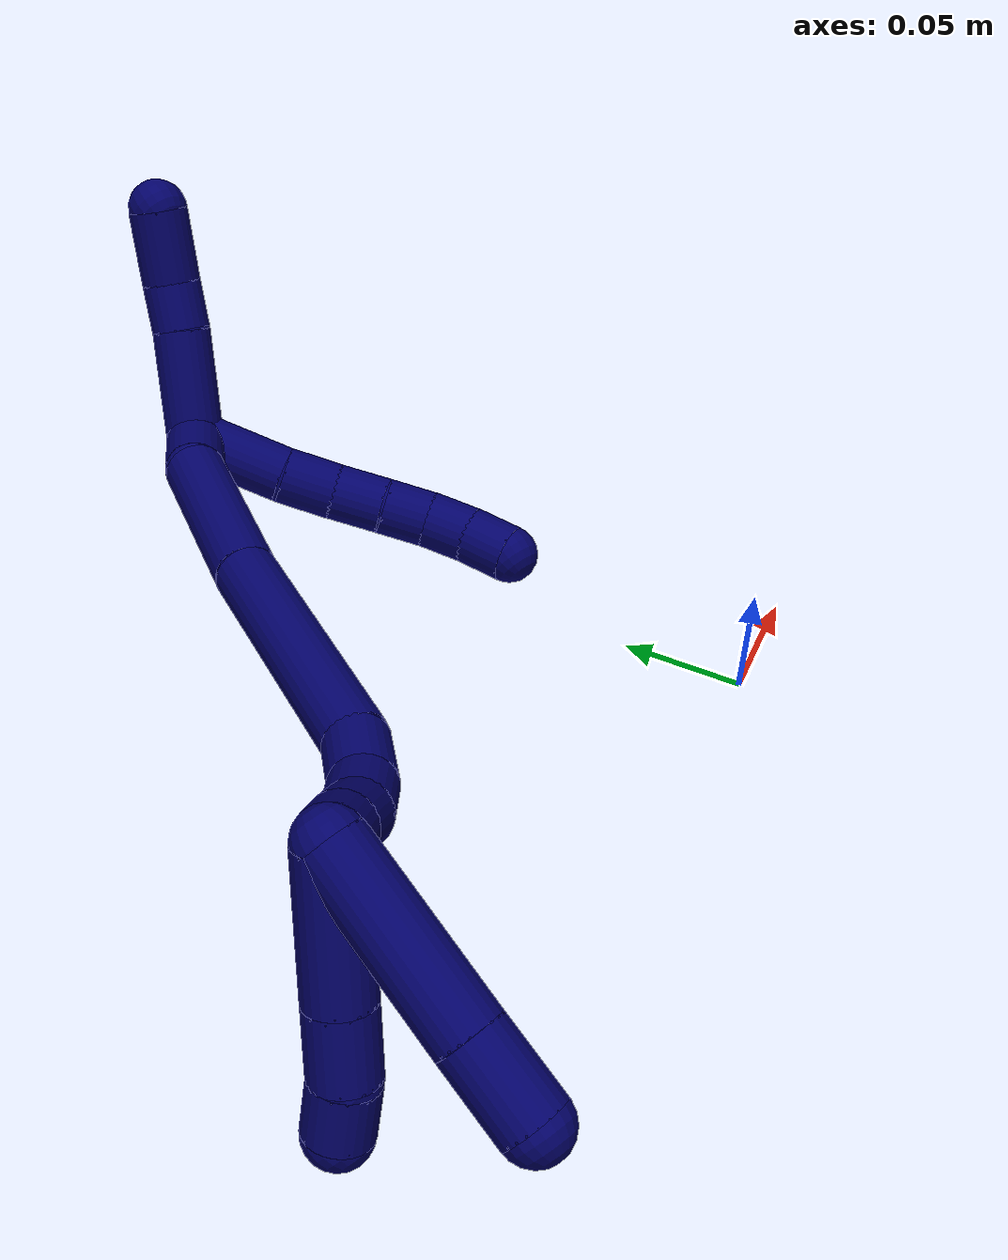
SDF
<sdf version="1.7">
 <world name="default">
  <model name="7">
   <static>0</static>
   <link name="7">
    <collision name="collision-cylinder-e_1_2_8">
     <pose>0.005984 -0.010526 -0.017146 2.59102 0.289101 0.951706</pose>
     <geometry><cylinder><radius>0.0125</radius><length>0.041981</length></cylinder></geometry>
     <surface>
      <friction><ode><mu>1.16</mu><mu2>1.16</mu2><slip1>0</slip1><slip2>0</slip2></ode></friction>
      <contact><ode><kp>1e+06</kp><kd>1</kd><max_vel>0</max_vel><min_depth>0.001</min_depth></ode></contact>
     </surface>
    </collision>
    <visual name="visual-cylinder-e_1_2_8">
     <pose>0.005984 -0.010526 -0.017146 2.59102 0.289101 0.951706</pose>
     <geometry><cylinder><radius>0.0125</radius><length>0.041981</length></cylinder></geometry>
     <material><ambient>0.003922 0 0.403922 1</ambient></material>
    </visual>
    <collision name="collision-cylinder-e_2_8_9">
     <pose>0.016353 -0.027671 -0.04328 2.5068 0.374322 1.04591</pose>
     <geometry><cylinder><radius>0.0125</radius><length>0.023983</length></cylinder></geometry>
     <surface>
      <friction><ode><mu>1.16</mu><mu2>1.16</mu2><slip1>0</slip1><slip2>0</slip2></ode></friction>
      <contact><ode><kp>1e+06</kp><kd>1</kd><max_vel>0</max_vel><min_depth>0.001</min_depth></ode></contact>
     </surface>
    </collision>
    <visual name="visual-cylinder-e_2_8_9">
     <pose>0.016353 -0.027671 -0.04328 2.5068 0.374322 1.04591</pose>
     <geometry><cylinder><radius>0.0125</radius><length>0.023983</length></cylinder></geometry>
     <material><ambient>0.003922 0 0.403922 1</ambient></material>
    </visual>
    <collision name="collision-cylinder-e_3_9_10">
     <pose>0.023216 -0.041104 -0.061062 2.48244 0.21914 0.622343</pose>
     <geometry><cylinder><radius>0.0125</radius><length>0.022799</length></cylinder></geometry>
     <surface>
      <friction><ode><mu>1.16</mu><mu2>1.16</mu2><slip1>0</slip1><slip2>0</slip2></ode></friction>
      <contact><ode><kp>1e+06</kp><kd>1</kd><max_vel>0</max_vel><min_depth>0.001</min_depth></ode></contact>
     </surface>
    </collision>
    <visual name="visual-cylinder-e_3_9_10">
     <pose>0.023216 -0.041104 -0.061062 2.48244 0.21914 0.622343</pose>
     <geometry><cylinder><radius>0.0125</radius><length>0.022799</length></cylinder></geometry>
     <material><ambient>0.003922 0 0.403922 1</ambient></material>
    </visual>
    <collision name="collision-cylinder-e_4_10_11">
     <pose>0.028912 -0.053942 -0.077698 2.48642 0.314732 0.873696</pose>
     <geometry><cylinder><radius>0.0125</radius><length>0.020795</length></cylinder></geometry>
     <surface>
      <friction><ode><mu>1.16</mu><mu2>1.16</mu2><slip1>0</slip1><slip2>0</slip2></ode></friction>
      <contact><ode><kp>1e+06</kp><kd>1</kd><max_vel>0</max_vel><min_depth>0.001</min_depth></ode></contact>
     </surface>
    </collision>
    <visual name="visual-cylinder-e_4_10_11">
     <pose>0.028912 -0.053942 -0.077698 2.48642 0.314732 0.873696</pose>
     <geometry><cylinder><radius>0.0125</radius><length>0.020795</length></cylinder></geometry>
     <material><ambient>0.003922 0 0.403922 1</ambient></material>
    </visual>
    <collision name="collision-cylinder-e_5_11_12">
     <pose>0.032655 -0.065461 -0.094051 2.56847 0.051633 0.174817</pose>
     <geometry><cylinder><radius>0.0125</radius><length>0.020293</length></cylinder></geometry>
     <surface>
      <friction><ode><mu>1.16</mu><mu2>1.16</mu2><slip1>0</slip1><slip2>0</slip2></ode></friction>
      <contact><ode><kp>1e+06</kp><kd>1</kd><max_vel>0</max_vel><min_depth>0.001</min_depth></ode></contact>
     </surface>
    </collision>
    <visual name="visual-cylinder-e_5_11_12">
     <pose>0.032655 -0.065461 -0.094051 2.56847 0.051633 0.174817</pose>
     <geometry><cylinder><radius>0.0125</radius><length>0.020293</length></cylinder></geometry>
     <material><ambient>0.003922 0 0.403922 1</ambient></material>
    </visual>
    <collision name="collision-cylinder-e_6_12_6">
     <pose>0.032473 -0.075771 -0.111386 2.64192 -0.070023 -0.272828</pose>
     <geometry><cylinder><radius>0.0125</radius><length>0.02015</length></cylinder></geometry>
     <surface>
      <friction><ode><mu>1.16</mu><mu2>1.16</mu2><slip1>0</slip1><slip2>0</slip2></ode></friction>
      <contact><ode><kp>1e+06</kp><kd>1</kd><max_vel>0</max_vel><min_depth>0.001</min_depth></ode></contact>
     </surface>
    </collision>
    <visual name="visual-cylinder-e_6_12_6">
     <pose>0.032473 -0.075771 -0.111386 2.64192 -0.070023 -0.272828</pose>
     <geometry><cylinder><radius>0.0125</radius><length>0.02015</length></cylinder></geometry>
     <material><ambient>0.003922 0 0.403922 1</ambient></material>
    </visual>
    <collision name="collision-cylinder-e_1_2_13">
     <pose>-0.00695 -0.012704 0.018975 0.58997 -0.295429 -0.090363</pose>
     <geometry><cylinder><radius>0.0125</radius><length>0.047739</length></cylinder></geometry>
     <surface>
      <friction><ode><mu>1.16</mu><mu2>1.16</mu2><slip1>0</slip1><slip2>0</slip2></ode></friction>
      <contact><ode><kp>1e+06</kp><kd>1</kd><max_vel>0</max_vel><min_depth>0.001</min_depth></ode></contact>
     </surface>
    </collision>
    <visual name="visual-cylinder-e_1_2_13">
     <pose>-0.00695 -0.012704 0.018975 0.58997 -0.295429 -0.090363</pose>
     <geometry><cylinder><radius>0.0125</radius><length>0.047739</length></cylinder></geometry>
     <material><ambient>0.003922 0 0.403922 1</ambient></material>
    </visual>
    <collision name="collision-cylinder-e_2_13_14">
     <pose>-0.016901 -0.030175 0.046553 0.505968 -0.296198 -0.0771</pose>
     <geometry><cylinder><radius>0.0125</radius><length>0.020565</length></cylinder></geometry>
     <surface>
      <friction><ode><mu>1.16</mu><mu2>1.16</mu2><slip1>0</slip1><slip2>0</slip2></ode></friction>
      <contact><ode><kp>1e+06</kp><kd>1</kd><max_vel>0</max_vel><min_depth>0.001</min_depth></ode></contact>
     </surface>
    </collision>
    <visual name="visual-cylinder-e_2_13_14">
     <pose>-0.016901 -0.030175 0.046553 0.505968 -0.296198 -0.0771</pose>
     <geometry><cylinder><radius>0.0125</radius><length>0.020565</length></cylinder></geometry>
     <material><ambient>0.003922 0 0.403922 1</ambient></material>
    </visual>
    <collision name="collision-cylinder-e_3_14_5">
     <pose>-0.026864 -0.042989 0.0669 0.600787 -0.454798 -0.143116</pose>
     <geometry><cylinder><radius>0.0125</radius><length>0.031696</length></cylinder></geometry>
     <surface>
      <friction><ode><mu>1.16</mu><mu2>1.16</mu2><slip1>0</slip1><slip2>0</slip2></ode></friction>
      <contact><ode><kp>1e+06</kp><kd>1</kd><max_vel>0</max_vel><min_depth>0.001</min_depth></ode></contact>
     </surface>
    </collision>
    <visual name="visual-cylinder-e_3_14_5">
     <pose>-0.026864 -0.042989 0.0669 0.600787 -0.454798 -0.143116</pose>
     <geometry><cylinder><radius>0.0125</radius><length>0.031696</length></cylinder></geometry>
     <material><ambient>0.003922 0 0.403922 1</ambient></material>
    </visual>
    <collision name="collision-cylinder-e_1_2_15">
     <pose>-0.01437 0.000262 -0.011173 -3.11815 -0.909769 3.09367</pose>
     <geometry><cylinder><radius>0.0125</radius><length>0.036408</length></cylinder></geometry>
     <surface>
      <friction><ode><mu>1.16</mu><mu2>1.16</mu2><slip1>0</slip1><slip2>0</slip2></ode></friction>
      <contact><ode><kp>1e+06</kp><kd>1</kd><max_vel>0</max_vel><min_depth>0.001</min_depth></ode></contact>
     </surface>
    </collision>
    <visual name="visual-cylinder-e_1_2_15">
     <pose>-0.01437 0.000262 -0.011173 -3.11815 -0.909769 3.09367</pose>
     <geometry><cylinder><radius>0.0125</radius><length>0.036408</length></cylinder></geometry>
     <material><ambient>0.003922 0 0.403922 1</ambient></material>
    </visual>
    <collision name="collision-cylinder-e_2_15_16">
     <pose>-0.049663 -0.00205 -0.053465 3.05906 -0.590367 -2.87167</pose>
     <geometry><cylinder><radius>0.0125</radius><length>0.075176</length></cylinder></geometry>
     <surface>
      <friction><ode><mu>1.16</mu><mu2>1.16</mu2><slip1>0</slip1><slip2>0</slip2></ode></friction>
      <contact><ode><kp>1e+06</kp><kd>1</kd><max_vel>0</max_vel><min_depth>0.001</min_depth></ode></contact>
     </surface>
    </collision>
    <visual name="visual-cylinder-e_2_15_16">
     <pose>-0.049663 -0.00205 -0.053465 3.05906 -0.590367 -2.87167</pose>
     <geometry><cylinder><radius>0.0125</radius><length>0.075176</length></cylinder></geometry>
     <material><ambient>0.003922 0 0.403922 1</ambient></material>
    </visual>
    <collision name="collision-cylinder-e_3_16_17">
     <pose>-0.09662 -0.011537 -0.128374 2.98502 -0.530975 -2.57985</pose>
     <geometry><cylinder><radius>0.0125</radius><length>0.10282</length></cylinder></geometry>
     <surface>
      <friction><ode><mu>1.16</mu><mu2>1.16</mu2><slip1>0</slip1><slip2>0</slip2></ode></friction>
      <contact><ode><kp>1e+06</kp><kd>1</kd><max_vel>0</max_vel><min_depth>0.001</min_depth></ode></contact>
     </surface>
    </collision>
    <visual name="visual-cylinder-e_3_16_17">
     <pose>-0.09662 -0.011537 -0.128374 2.98502 -0.530975 -2.57985</pose>
     <geometry><cylinder><radius>0.0125</radius><length>0.10282</length></cylinder></geometry>
     <material><ambient>0.003922 0 0.403922 1</ambient></material>
    </visual>
    <collision name="collision-cylinder-e_4_17_18">
     <pose>-0.131313 -0.017684 -0.180396 -3.04883 -0.808555 2.92548</pose>
     <geometry><cylinder><radius>0.0125</radius><length>0.023946</length></cylinder></geometry>
     <surface>
      <friction><ode><mu>1.16</mu><mu2>1.16</mu2><slip1>0</slip1><slip2>0</slip2></ode></friction>
      <contact><ode><kp>1e+06</kp><kd>1</kd><max_vel>0</max_vel><min_depth>0.001</min_depth></ode></contact>
     </surface>
    </collision>
    <visual name="visual-cylinder-e_4_17_18">
     <pose>-0.131313 -0.017684 -0.180396 -3.04883 -0.808555 2.92548</pose>
     <geometry><cylinder><radius>0.0125</radius><length>0.023946</length></cylinder></geometry>
     <material><ambient>0.003922 0 0.403922 1</ambient></material>
    </visual>
    <collision name="collision-cylinder-e_5_18_19">
     <pose>-0.149208 -0.016154 -0.193012 -2.96914 -1.1218 2.8681</pose>
     <geometry><cylinder><radius>0.0125</radius><length>0.020503</length></cylinder></geometry>
     <surface>
      <friction><ode><mu>1.16</mu><mu2>1.16</mu2><slip1>0</slip1><slip2>0</slip2></ode></friction>
      <contact><ode><kp>1e+06</kp><kd>1</kd><max_vel>0</max_vel><min_depth>0.001</min_depth></ode></contact>
     </surface>
    </collision>
    <visual name="visual-cylinder-e_5_18_19">
     <pose>-0.149208 -0.016154 -0.193012 -2.96914 -1.1218 2.8681</pose>
     <geometry><cylinder><radius>0.0125</radius><length>0.020503</length></cylinder></geometry>
     <material><ambient>0.003922 0 0.403922 1</ambient></material>
    </visual>
    <collision name="collision-cylinder-e_6_19_20">
     <pose>-0.168766 -0.015087 -0.199055 -2.96043 -1.40881 2.92864</pose>
     <geometry><cylinder><radius>0.0125</radius><length>0.020919</length></cylinder></geometry>
     <surface>
      <friction><ode><mu>1.16</mu><mu2>1.16</mu2><slip1>0</slip1><slip2>0</slip2></ode></friction>
      <contact><ode><kp>1e+06</kp><kd>1</kd><max_vel>0</max_vel><min_depth>0.001</min_depth></ode></contact>
     </surface>
    </collision>
    <visual name="visual-cylinder-e_6_19_20">
     <pose>-0.168766 -0.015087 -0.199055 -2.96043 -1.40881 2.92864</pose>
     <geometry><cylinder><radius>0.0125</radius><length>0.020919</length></cylinder></geometry>
     <material><ambient>0.003922 0 0.403922 1</ambient></material>
    </visual>
    <collision name="collision-cylinder-e_7_20_1">
     <pose>-0.188992 -0.015152 -0.202736 2.96106 -1.3662 -2.92006</pose>
     <geometry><cylinder><radius>0.0125</radius><length>0.020227</length></cylinder></geometry>
     <surface>
      <friction><ode><mu>1.16</mu><mu2>1.16</mu2><slip1>0</slip1><slip2>0</slip2></ode></friction>
      <contact><ode><kp>1e+06</kp><kd>1</kd><max_vel>0</max_vel><min_depth>0.001</min_depth></ode></contact>
     </surface>
    </collision>
    <visual name="visual-cylinder-e_7_20_1">
     <pose>-0.188992 -0.015152 -0.202736 2.96106 -1.3662 -2.92006</pose>
     <geometry><cylinder><radius>0.0125</radius><length>0.020227</length></cylinder></geometry>
     <material><ambient>0.003922 0 0.403922 1</ambient></material>
    </visual>
    <collision name="collision-cylinder-e_1_1_21">
     <pose>-0.197722 -0.016903 -0.239305 3.1016 0.033883 1.40581</pose>
     <geometry><cylinder><radius>0.0125</radius><length>0.069191</length></cylinder></geometry>
     <surface>
      <friction><ode><mu>1.16</mu><mu2>1.16</mu2><slip1>0</slip1><slip2>0</slip2></ode></friction>
      <contact><ode><kp>1e+06</kp><kd>1</kd><max_vel>0</max_vel><min_depth>0.001</min_depth></ode></contact>
     </surface>
    </collision>
    <visual name="visual-cylinder-e_1_1_21">
     <pose>-0.197722 -0.016903 -0.239305 3.1016 0.033883 1.40581</pose>
     <geometry><cylinder><radius>0.0125</radius><length>0.069191</length></cylinder></geometry>
     <material><ambient>0.003922 0 0.403922 1</ambient></material>
    </visual>
    <collision name="collision-cylinder-e_2_21_4">
     <pose>-0.195761 -0.019021 -0.28922 3.09371 0.051281 1.63933</pose>
     <geometry><cylinder><radius>0.0125</radius><length>0.030809</length></cylinder></geometry>
     <surface>
      <friction><ode><mu>1.16</mu><mu2>1.16</mu2><slip1>0</slip1><slip2>0</slip2></ode></friction>
      <contact><ode><kp>1e+06</kp><kd>1</kd><max_vel>0</max_vel><min_depth>0.001</min_depth></ode></contact>
     </surface>
    </collision>
    <visual name="visual-cylinder-e_2_21_4">
     <pose>-0.195761 -0.019021 -0.28922 3.09371 0.051281 1.63933</pose>
     <geometry><cylinder><radius>0.0125</radius><length>0.030809</length></cylinder></geometry>
     <material><ambient>0.003922 0 0.403922 1</ambient></material>
    </visual>
    <collision name="collision-cylinder-e_1_1_22">
     <pose>-0.190116 -0.000189 -0.224369 -2.47806 0.339006 -0.922155</pose>
     <geometry><cylinder><radius>0.0125</radius><length>0.052791</length></cylinder></geometry>
     <surface>
      <friction><ode><mu>1.16</mu><mu2>1.16</mu2><slip1>0</slip1><slip2>0</slip2></ode></friction>
      <contact><ode><kp>1e+06</kp><kd>1</kd><max_vel>0</max_vel><min_depth>0.001</min_depth></ode></contact>
     </surface>
    </collision>
    <visual name="visual-cylinder-e_1_1_22">
     <pose>-0.190116 -0.000189 -0.224369 -2.47806 0.339006 -0.922155</pose>
     <geometry><cylinder><radius>0.0125</radius><length>0.052791</length></cylinder></geometry>
     <material><ambient>0.003922 0 0.403922 1</ambient></material>
    </visual>
    <collision name="collision-cylinder-e_2_22_23">
     <pose>-0.176942 0.022797 -0.253834 -2.48125 0.338803 -0.92581</pose>
     <geometry><cylinder><radius>0.0125</radius><length>0.026458</length></cylinder></geometry>
     <surface>
      <friction><ode><mu>1.16</mu><mu2>1.16</mu2><slip1>0</slip1><slip2>0</slip2></ode></friction>
      <contact><ode><kp>1e+06</kp><kd>1</kd><max_vel>0</max_vel><min_depth>0.001</min_depth></ode></contact>
     </surface>
    </collision>
    <visual name="visual-cylinder-e_2_22_23">
     <pose>-0.176942 0.022797 -0.253834 -2.48125 0.338803 -0.92581</pose>
     <geometry><cylinder><radius>0.0125</radius><length>0.026458</length></cylinder></geometry>
     <material><ambient>0.003922 0 0.403922 1</ambient></material>
    </visual>
    <collision name="collision-cylinder-e_3_23_3">
     <pose>-0.168653 0.037784 -0.269911 -2.2744 0.38453 -0.796051</pose>
     <geometry><cylinder><radius>0.0125</radius><length>0.02075</length></cylinder></geometry>
     <surface>
      <friction><ode><mu>1.16</mu><mu2>1.16</mu2><slip1>0</slip1><slip2>0</slip2></ode></friction>
      <contact><ode><kp>1e+06</kp><kd>1</kd><max_vel>0</max_vel><min_depth>0.001</min_depth></ode></contact>
     </surface>
    </collision>
    <visual name="visual-cylinder-e_3_23_3">
     <pose>-0.168653 0.037784 -0.269911 -2.2744 0.38453 -0.796051</pose>
     <geometry><cylinder><radius>0.0125</radius><length>0.02075</length></cylinder></geometry>
     <material><ambient>0.003922 0 0.403922 1</ambient></material>
    </visual>
    <collision name="collision-sphere-3">
     <pose>-0.164761 0.045117 -0.276133 0 -0 0</pose>
     <geometry><sphere><radius>0.0125</radius></sphere></geometry>
     <surface>
      <friction><ode><mu>1.16</mu><mu2>1.16</mu2><slip1>0</slip1><slip2>0</slip2></ode></friction>
      <contact><ode><kp>1e+06</kp><kd>1</kd><max_vel>0</max_vel><min_depth>0.001</min_depth></ode></contact>
     </surface>
    </collision>
    <visual name="visual-sphere-3">
     <pose>-0.164761 0.045117 -0.276133 0 -0 0</pose>
     <geometry><sphere><radius>0.0125</radius></sphere></geometry>
     <material><ambient>0.003922 0 0.403922 1</ambient></material>
    </visual>
    <collision name="collision-sphere-23">
     <pose>-0.172545 0.03045 -0.263689 0 -0 0</pose>
     <geometry><sphere><radius>0.0125</radius></sphere></geometry>
     <surface>
      <friction><ode><mu>1.16</mu><mu2>1.16</mu2><slip1>0</slip1><slip2>0</slip2></ode></friction>
      <contact><ode><kp>1e+06</kp><kd>1</kd><max_vel>0</max_vel><min_depth>0.001</min_depth></ode></contact>
     </surface>
    </collision>
    <visual name="visual-sphere-23">
     <pose>-0.172545 0.03045 -0.263689 0 -0 0</pose>
     <geometry><sphere><radius>0.0125</radius></sphere></geometry>
     <material><ambient>0.003922 0 0.403922 1</ambient></material>
    </visual>
    <collision name="collision-sphere-22">
     <pose>-0.181339 0.015143 -0.24398 0 -0 0</pose>
     <geometry><sphere><radius>0.0125</radius></sphere></geometry>
     <surface>
      <friction><ode><mu>1.16</mu><mu2>1.16</mu2><slip1>0</slip1><slip2>0</slip2></ode></friction>
      <contact><ode><kp>1e+06</kp><kd>1</kd><max_vel>0</max_vel><min_depth>0.001</min_depth></ode></contact>
     </surface>
    </collision>
    <visual name="visual-sphere-22">
     <pose>-0.181339 0.015143 -0.24398 0 -0 0</pose>
     <geometry><sphere><radius>0.0125</radius></sphere></geometry>
     <material><ambient>0.003922 0 0.403922 1</ambient></material>
    </visual>
    <collision name="collision-sphere-4">
     <pose>-0.194971 -0.019758 -0.304587 0 -0 0</pose>
     <geometry><sphere><radius>0.0125</radius></sphere></geometry>
     <surface>
      <friction><ode><mu>1.16</mu><mu2>1.16</mu2><slip1>0</slip1><slip2>0</slip2></ode></friction>
      <contact><ode><kp>1e+06</kp><kd>1</kd><max_vel>0</max_vel><min_depth>0.001</min_depth></ode></contact>
     </surface>
    </collision>
    <visual name="visual-sphere-4">
     <pose>-0.194971 -0.019758 -0.304587 0 -0 0</pose>
     <geometry><sphere><radius>0.0125</radius></sphere></geometry>
     <material><ambient>0.003922 0 0.403922 1</ambient></material>
    </visual>
    <collision name="collision-sphere-21">
     <pose>-0.19655 -0.018285 -0.273853 0 -0 0</pose>
     <geometry><sphere><radius>0.0125</radius></sphere></geometry>
     <surface>
      <friction><ode><mu>1.16</mu><mu2>1.16</mu2><slip1>0</slip1><slip2>0</slip2></ode></friction>
      <contact><ode><kp>1e+06</kp><kd>1</kd><max_vel>0</max_vel><min_depth>0.001</min_depth></ode></contact>
     </surface>
    </collision>
    <visual name="visual-sphere-21">
     <pose>-0.19655 -0.018285 -0.273853 0 -0 0</pose>
     <geometry><sphere><radius>0.0125</radius></sphere></geometry>
     <material><ambient>0.003922 0 0.403922 1</ambient></material>
    </visual>
    <collision name="collision-sphere-1">
     <pose>-0.198894 -0.01552 -0.204757 0 -0 0</pose>
     <geometry><sphere><radius>0.0125</radius></sphere></geometry>
     <surface>
      <friction><ode><mu>1.16</mu><mu2>1.16</mu2><slip1>0</slip1><slip2>0</slip2></ode></friction>
      <contact><ode><kp>1e+06</kp><kd>1</kd><max_vel>0</max_vel><min_depth>0.001</min_depth></ode></contact>
     </surface>
    </collision>
    <visual name="visual-sphere-1">
     <pose>-0.198894 -0.01552 -0.204757 0 -0 0</pose>
     <geometry><sphere><radius>0.0125</radius></sphere></geometry>
     <material><ambient>0.003922 0 0.403922 1</ambient></material>
    </visual>
    <collision name="collision-sphere-12">
     <pose>0.033178 -0.070955 -0.102565 0 -0 0</pose>
     <geometry><sphere><radius>0.0125</radius></sphere></geometry>
     <surface>
      <friction><ode><mu>1.16</mu><mu2>1.16</mu2><slip1>0</slip1><slip2>0</slip2></ode></friction>
      <contact><ode><kp>1e+06</kp><kd>1</kd><max_vel>0</max_vel><min_depth>0.001</min_depth></ode></contact>
     </surface>
    </collision>
    <visual name="visual-sphere-12">
     <pose>0.033178 -0.070955 -0.102565 0 -0 0</pose>
     <geometry><sphere><radius>0.0125</radius></sphere></geometry>
     <material><ambient>0.003922 0 0.403922 1</ambient></material>
    </visual>
    <collision name="collision-sphere-11">
     <pose>0.032131 -0.059966 -0.085537 0 -0 0</pose>
     <geometry><sphere><radius>0.0125</radius></sphere></geometry>
     <surface>
      <friction><ode><mu>1.16</mu><mu2>1.16</mu2><slip1>0</slip1><slip2>0</slip2></ode></friction>
      <contact><ode><kp>1e+06</kp><kd>1</kd><max_vel>0</max_vel><min_depth>0.001</min_depth></ode></contact>
     </surface>
    </collision>
    <visual name="visual-sphere-11">
     <pose>0.032131 -0.059966 -0.085537 0 -0 0</pose>
     <geometry><sphere><radius>0.0125</radius></sphere></geometry>
     <material><ambient>0.003922 0 0.403922 1</ambient></material>
    </visual>
    <collision name="collision-sphere-10">
     <pose>0.025694 -0.047919 -0.069858 0 -0 0</pose>
     <geometry><sphere><radius>0.0125</radius></sphere></geometry>
     <surface>
      <friction><ode><mu>1.16</mu><mu2>1.16</mu2><slip1>0</slip1><slip2>0</slip2></ode></friction>
      <contact><ode><kp>1e+06</kp><kd>1</kd><max_vel>0</max_vel><min_depth>0.001</min_depth></ode></contact>
     </surface>
    </collision>
    <visual name="visual-sphere-10">
     <pose>0.025694 -0.047919 -0.069858 0 -0 0</pose>
     <geometry><sphere><radius>0.0125</radius></sphere></geometry>
     <material><ambient>0.003922 0 0.403922 1</ambient></material>
    </visual>
    <collision name="collision-sphere-9">
     <pose>0.020738 -0.034289 -0.052266 0 -0 0</pose>
     <geometry><sphere><radius>0.0125</radius></sphere></geometry>
     <surface>
      <friction><ode><mu>1.16</mu><mu2>1.16</mu2><slip1>0</slip1><slip2>0</slip2></ode></friction>
      <contact><ode><kp>1e+06</kp><kd>1</kd><max_vel>0</max_vel><min_depth>0.001</min_depth></ode></contact>
     </surface>
    </collision>
    <visual name="visual-sphere-9">
     <pose>0.020738 -0.034289 -0.052266 0 -0 0</pose>
     <geometry><sphere><radius>0.0125</radius></sphere></geometry>
     <material><ambient>0.003922 0 0.403922 1</ambient></material>
    </visual>
    <collision name="collision-sphere-2">
     <geometry><sphere><radius>0.0125</radius></sphere></geometry>
     <surface>
      <friction><ode><mu>1.16</mu><mu2>1.16</mu2><slip1>0</slip1><slip2>0</slip2></ode></friction>
      <contact><ode><kp>1e+06</kp><kd>1</kd><max_vel>0</max_vel><min_depth>0.001</min_depth></ode></contact>
     </surface>
    </collision>
    <visual name="visual-sphere-2">
     <geometry><sphere><radius>0.0125</radius></sphere></geometry>
     <material><ambient>0.003922 0 0.403922 1</ambient></material>
    </visual>
    <collision name="collision-sphere-19">
     <pose>-0.158443 -0.01539 -0.197396 0 -0 0</pose>
     <geometry><sphere><radius>0.0125</radius></sphere></geometry>
     <surface>
      <friction><ode><mu>1.16</mu><mu2>1.16</mu2><slip1>0</slip1><slip2>0</slip2></ode></friction>
      <contact><ode><kp>1e+06</kp><kd>1</kd><max_vel>0</max_vel><min_depth>0.001</min_depth></ode></contact>
     </surface>
    </collision>
    <visual name="visual-sphere-19">
     <pose>-0.158443 -0.01539 -0.197396 0 -0 0</pose>
     <geometry><sphere><radius>0.0125</radius></sphere></geometry>
     <material><ambient>0.003922 0 0.403922 1</ambient></material>
    </visual>
    <collision name="collision-sphere-8">
     <pose>0.011968 -0.021052 -0.034293 0 -0 0</pose>
     <geometry><sphere><radius>0.0125</radius></sphere></geometry>
     <surface>
      <friction><ode><mu>1.16</mu><mu2>1.16</mu2><slip1>0</slip1><slip2>0</slip2></ode></friction>
      <contact><ode><kp>1e+06</kp><kd>1</kd><max_vel>0</max_vel><min_depth>0.001</min_depth></ode></contact>
     </surface>
    </collision>
    <visual name="visual-sphere-8">
     <pose>0.011968 -0.021052 -0.034293 0 -0 0</pose>
     <geometry><sphere><radius>0.0125</radius></sphere></geometry>
     <material><ambient>0.003922 0 0.403922 1</ambient></material>
    </visual>
    <collision name="collision-sphere-6">
     <pose>0.031769 -0.080586 -0.120208 0 -0 0</pose>
     <geometry><sphere><radius>0.0125</radius></sphere></geometry>
     <surface>
      <friction><ode><mu>1.16</mu><mu2>1.16</mu2><slip1>0</slip1><slip2>0</slip2></ode></friction>
      <contact><ode><kp>1e+06</kp><kd>1</kd><max_vel>0</max_vel><min_depth>0.001</min_depth></ode></contact>
     </surface>
    </collision>
    <visual name="visual-sphere-6">
     <pose>0.031769 -0.080586 -0.120208 0 -0 0</pose>
     <geometry><sphere><radius>0.0125</radius></sphere></geometry>
     <material><ambient>0.003922 0 0.403922 1</ambient></material>
    </visual>
    <collision name="collision-sphere-13">
     <pose>-0.013899 -0.025409 0.037951 0 -0 0</pose>
     <geometry><sphere><radius>0.0125</radius></sphere></geometry>
     <surface>
      <friction><ode><mu>1.16</mu><mu2>1.16</mu2><slip1>0</slip1><slip2>0</slip2></ode></friction>
      <contact><ode><kp>1e+06</kp><kd>1</kd><max_vel>0</max_vel><min_depth>0.001</min_depth></ode></contact>
     </surface>
    </collision>
    <visual name="visual-sphere-13">
     <pose>-0.013899 -0.025409 0.037951 0 -0 0</pose>
     <geometry><sphere><radius>0.0125</radius></sphere></geometry>
     <material><ambient>0.003922 0 0.403922 1</ambient></material>
    </visual>
    <collision name="collision-sphere-14">
     <pose>-0.019902 -0.034941 0.055156 0 -0 0</pose>
     <geometry><sphere><radius>0.0125</radius></sphere></geometry>
     <surface>
      <friction><ode><mu>1.16</mu><mu2>1.16</mu2><slip1>0</slip1><slip2>0</slip2></ode></friction>
      <contact><ode><kp>1e+06</kp><kd>1</kd><max_vel>0</max_vel><min_depth>0.001</min_depth></ode></contact>
     </surface>
    </collision>
    <visual name="visual-sphere-14">
     <pose>-0.019902 -0.034941 0.055156 0 -0 0</pose>
     <geometry><sphere><radius>0.0125</radius></sphere></geometry>
     <material><ambient>0.003922 0 0.403922 1</ambient></material>
    </visual>
    <collision name="collision-sphere-5">
     <pose>-0.033825 -0.051037 0.078644 0 -0 0</pose>
     <geometry><sphere><radius>0.0125</radius></sphere></geometry>
     <surface>
      <friction><ode><mu>1.16</mu><mu2>1.16</mu2><slip1>0</slip1><slip2>0</slip2></ode></friction>
      <contact><ode><kp>1e+06</kp><kd>1</kd><max_vel>0</max_vel><min_depth>0.001</min_depth></ode></contact>
     </surface>
    </collision>
    <visual name="visual-sphere-5">
     <pose>-0.033825 -0.051037 0.078644 0 -0 0</pose>
     <geometry><sphere><radius>0.0125</radius></sphere></geometry>
     <material><ambient>0.003922 0 0.403922 1</ambient></material>
    </visual>
    <collision name="collision-sphere-15">
     <pose>-0.028739 0.000524 -0.022346 0 -0 0</pose>
     <geometry><sphere><radius>0.0125</radius></sphere></geometry>
     <surface>
      <friction><ode><mu>1.16</mu><mu2>1.16</mu2><slip1>0</slip1><slip2>0</slip2></ode></friction>
      <contact><ode><kp>1e+06</kp><kd>1</kd><max_vel>0</max_vel><min_depth>0.001</min_depth></ode></contact>
     </surface>
    </collision>
    <visual name="visual-sphere-15">
     <pose>-0.028739 0.000524 -0.022346 0 -0 0</pose>
     <geometry><sphere><radius>0.0125</radius></sphere></geometry>
     <material><ambient>0.003922 0 0.403922 1</ambient></material>
    </visual>
    <collision name="collision-sphere-16">
     <pose>-0.070587 -0.004624 -0.084585 0 -0 0</pose>
     <geometry><sphere><radius>0.0125</radius></sphere></geometry>
     <surface>
      <friction><ode><mu>1.16</mu><mu2>1.16</mu2><slip1>0</slip1><slip2>0</slip2></ode></friction>
      <contact><ode><kp>1e+06</kp><kd>1</kd><max_vel>0</max_vel><min_depth>0.001</min_depth></ode></contact>
     </surface>
    </collision>
    <visual name="visual-sphere-16">
     <pose>-0.070587 -0.004624 -0.084585 0 -0 0</pose>
     <geometry><sphere><radius>0.0125</radius></sphere></geometry>
     <material><ambient>0.003922 0 0.403922 1</ambient></material>
    </visual>
    <collision name="collision-sphere-17">
     <pose>-0.122653 -0.018449 -0.172163 0 -0 0</pose>
     <geometry><sphere><radius>0.0125</radius></sphere></geometry>
     <surface>
      <friction><ode><mu>1.16</mu><mu2>1.16</mu2><slip1>0</slip1><slip2>0</slip2></ode></friction>
      <contact><ode><kp>1e+06</kp><kd>1</kd><max_vel>0</max_vel><min_depth>0.001</min_depth></ode></contact>
     </surface>
    </collision>
    <visual name="visual-sphere-17">
     <pose>-0.122653 -0.018449 -0.172163 0 -0 0</pose>
     <geometry><sphere><radius>0.0125</radius></sphere></geometry>
     <material><ambient>0.003922 0 0.403922 1</ambient></material>
    </visual>
    <collision name="collision-sphere-18">
     <pose>-0.139973 -0.016918 -0.188628 0 -0 0</pose>
     <geometry><sphere><radius>0.0125</radius></sphere></geometry>
     <surface>
      <friction><ode><mu>1.16</mu><mu2>1.16</mu2><slip1>0</slip1><slip2>0</slip2></ode></friction>
      <contact><ode><kp>1e+06</kp><kd>1</kd><max_vel>0</max_vel><min_depth>0.001</min_depth></ode></contact>
     </surface>
    </collision>
    <visual name="visual-sphere-18">
     <pose>-0.139973 -0.016918 -0.188628 0 -0 0</pose>
     <geometry><sphere><radius>0.0125</radius></sphere></geometry>
     <material><ambient>0.003922 0 0.403922 1</ambient></material>
    </visual>
    <collision name="collision-sphere-20">
     <pose>-0.179089 -0.014783 -0.200714 0 -0 0</pose>
     <geometry><sphere><radius>0.0125</radius></sphere></geometry>
     <surface>
      <friction><ode><mu>1.16</mu><mu2>1.16</mu2><slip1>0</slip1><slip2>0</slip2></ode></friction>
      <contact><ode><kp>1e+06</kp><kd>1</kd><max_vel>0</max_vel><min_depth>0.001</min_depth></ode></contact>
     </surface>
    </collision>
    <visual name="visual-sphere-20">
     <pose>-0.179089 -0.014783 -0.200714 0 -0 0</pose>
     <geometry><sphere><radius>0.0125</radius></sphere></geometry>
     <material><ambient>0.003922 0 0.403922 1</ambient></material>
    </visual>
    <inertial>
     <pose>-0.08549 -0.015593 -0.11831 0 -0 0</pose>
     <mass>0.75</mass>
     <inertia><ixx>-0.0001</ixx><ixy>0</ixy><ixz>0</ixz><iyy>9.8e-05</iyy><iyz>0</iyz><izz>6.3e-05</izz></inertia>
    </inertial>
   </link>
   <pose>-0.004376 0.256046 0.044122 -0.888952 0.809755 0.07774</pose>
  </model>
 </world>
</sdf>
